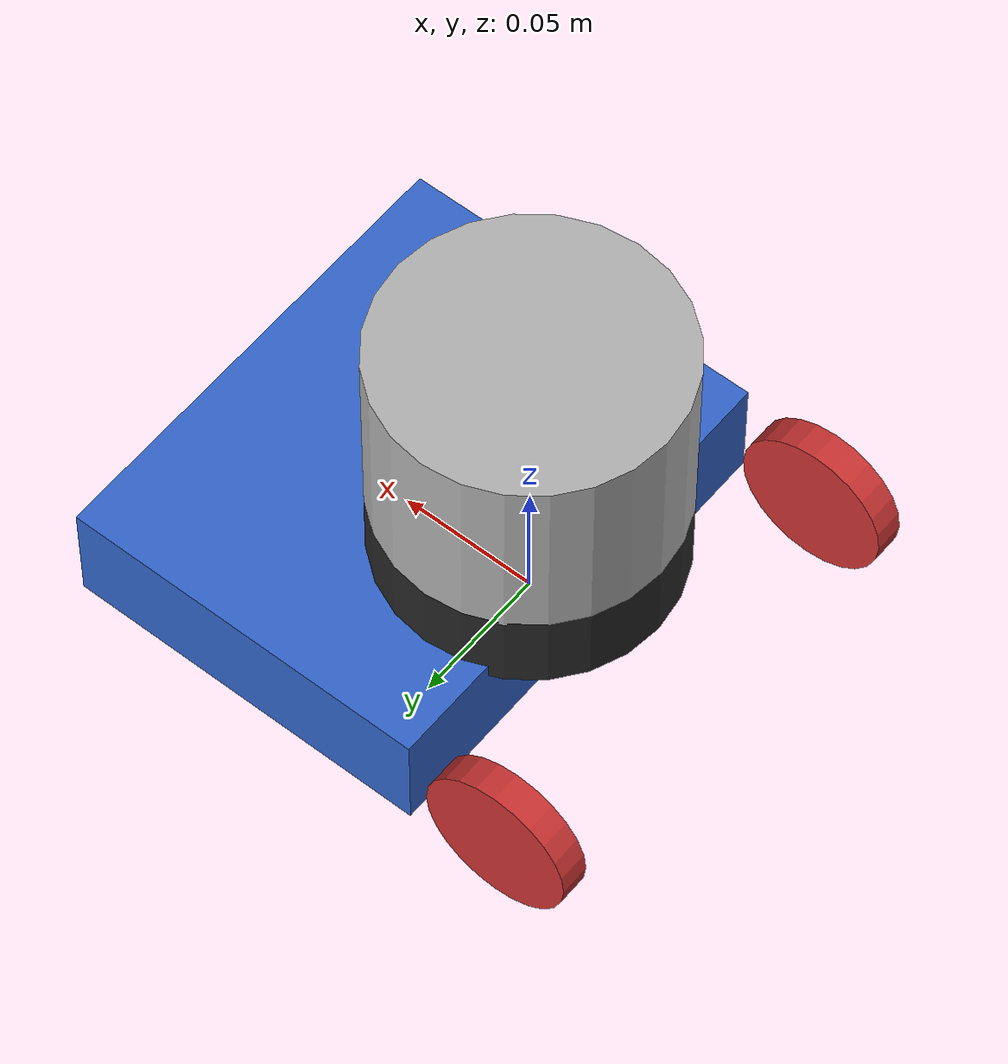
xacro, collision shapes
<?xml version="1.0"?>
<robot name="turtlebot" xmlns:xacro="http://ros.org/wiki/xacro">

  <xacro:include filename="bot_ros2_control.xacro"/>

  <!-- Base Footprint (reference frame) -->
  <link name="base_footprint"/>

  <!-- Main Base Link -->
  <link name="base_link">
    <inertial>
      <origin xyz="-0.03 0 0" rpy="0 0 0"/>
      <mass value="2"/>
      <inertia ixx="0.004883" ixy="0" ixz="0" iyy="0.003067" iyz="0" izz="0.007683"/>
    </inertial>

    <collision name="base_collision">
      <origin xyz="0.0465 0 0" rpy="0 0 0"/>
      <geometry>
        <box size="0.135 0.17 0.04"/>
      </geometry>
      <surface>
        <contact>
          <ode>
            <min_depth>0.001</min_depth>
            <max_vel>0</max_vel>
          </ode>
        </contact>
      </surface>
    </collision>

    <visual name="base_visual">
      <origin xyz="0 0 0" rpy="0 0 0"/>
      <geometry>
        <box  size="0.17 0.17 0.035"/>
      </geometry>
      <material name="blue">
        <color rgba="0.2 0.4 0.8 1"/>
      </material>
    </visual>

  </link>

  <!-- Fixed joint between base_footprint and base_link -->
  <joint name="base_footprint_joint" type="fixed">
    <parent link="base_footprint"/>
    <child link="base_link"/>
    <origin xyz="0 0 0.01" rpy="0 0 0"/>
  </joint>

  <!-- ========== LEFT WHEEL ========== -->

  <link name="base_left_wheel">
    <inertial>
      <origin xyz="0 0 0" rpy="0 0 0"/>
      <mass value="0.5"/>
      <inertia ixx="0.000091" ixy="0" ixz="0" iyy="0.000182" iyz="0" izz="0.000091"/>
    </inertial>

    <visual name="base_left_wheel_visual">
      <origin xyz="0 0 0" rpy="1.57079632679 0 0"/>
      <geometry>
        <cylinder radius="0.027" length="0.011"/>
      </geometry>
      <material name="red">
        <color rgba="0.8 0.2 0.2 1"/>
      </material>
    </visual>

    <collision name="base_left_wheel_collision">
      <origin xyz="0 0 0" rpy="1.57079632679 0 0"/>
      <geometry>
        <cylinder radius="0.027" length="0.011"/>
      </geometry>
    </collision>
  </link>

  <joint name="base_left_wheel_joint" type="continuous">
    <parent link="base_link"/>
    <child link="base_left_wheel"/>
    <origin xyz="-0.055 0.08 0" rpy="0 0 0"/>
    <axis xyz="0 1 0"/>
  </joint>

    <!-- ========== RIGHTWHEEL ========== -->

  <link name="base_right_wheel">
    <inertial>
      <origin xyz="0 0 0" rpy="0 0 0"/>
      <mass value="0.5"/>
      <inertia ixx="0.000091" ixy="0" ixz="0" iyy="0.000182" iyz="0" izz="0.000091"/>
    </inertial>

    <visual name="base_right_wheel_visual">
      <origin xyz="0 0 0" rpy="1.57079632679 0 0"/>
      <geometry>
        <cylinder radius="0.027" length="0.011"/>
      </geometry>
      <material name="red">
        <color rgba="0.8 0.2 0.2 1"/>
      </material>
    </visual>

    <collision name="base_right_wheel_collision">
      <origin xyz="0 0 0" rpy="1.57079632679 0 0"/>
      <geometry>
        <cylinder radius="0.027" length="0.011"/>
      </geometry>
    </collision>
  </link>

  <joint name="base_right_wheel_joint" type="continuous">
    <parent link="base_link"/>
    <child link="base_right_wheel"/>
    <origin xyz="-0.055 -0.08 0" rpy="0 0 0"/>
    <axis xyz="0 1 0"/>
  </joint>

<!-- =========CASTER WHEEL========== -->

  <link name="caster_wheel">
    <inertial>
      <origin xyz="0 0 0" rpy="0 0 0"/>
      <mass value="0.01"/>
      <inertia ixx="0.000000010" ixy="0" ixz="0" iyy="0.000000010" iyz="0" izz="0.000000010"/>
    </inertial>

    <visual name="caster_wheel_visual">
      <origin xyz="0 0 0" rpy="0 0 0"/>
      <geometry>
        <sphere radius="0.005"/>
      </geometry>
      <material name="green">
        <color rgba="0.2 0.7 0.3 1"/>
      </material>
    </visual>

    <collision name="caster_wheel_collision">
      <origin xyz="0 0 0" rpy="0 0 0"/>
      <geometry>
        <sphere radius="0.005"/>
      </geometry>
      <surface>
        <contact>
          <ode>
            <min_depth>0.001</min_depth>
            <max_vel>0</max_vel>
          </ode>
        </contact>
      </surface>
    </collision>
  </link>

  <joint name="caster_wheel_joint" type="fixed">
    <parent link="base_link"/>
    <child link="caster_wheel"/>
    <origin xyz="0.075 0 -0.02" rpy="0 0 0"/>
  </joint>

   <link name="rgb_camera">
    <inertial>
    <origin xyz="-0.03 0 0" rpy="0 0 0"/>
        <mass value="0.1" />
        <inertia ixx="0.000023" ixy="0.0" ixz="0"
            iyy="0.000011" iyz="0" izz="0.000030" />
    </inertial>
    <visual>
      <origin xyz="0 0 0" rpy="0 0 1.57079632679" />
      <geometry>
         <mesh filename="file:///home/aditya-pachauri/turtlebot_ros_cir_ws/src/bot_description/meshes/3dCamera.DAE" scale="1 1 1"/>
      </geometry>
    </visual>

    <collision>
      <origin xyz="0 0 0" rpy="0 0 0"/>
      <geometry>
          <box size="0.03 0.05 0.02" />
      </geometry>
    </collision>
  </link>

  <joint name="camera_joint" type="fixed">
    <origin xyz="0.085 0 0.002" rpy="0 0.0 0"/>
    <parent link="base_link"/>
    <child link="rgb_camera"/>
    <axis xyz="0.0 0 0"/>
  </joint>

  <joint type="fixed" name="camera_optical_joint">
    <origin xyz="0 0 0.151" rpy="0 0 0"/>
    <parent link="rgb_camera"/>
    <child link="camera_link_optical"/>
  </joint>

   <link name="camera_link_optical">
  </link>

    <gazebo reference="camera_link_optical">
    <sensor name="camera" type="camera">
      <camera>
        <horizontal_fov>1.3962634</horizontal_fov>
        <image>
          <width>640</width>
          <height>480</height>
          <format>R8G8B8</format>
        </image>
        <clip>
          <near>0.1</near>
          <far>15</far>
        </clip>
        <noise>
          <type>gaussian</type>
          <mean>0.0</mean>
          <stddev>0.007</stddev>
        </noise>
        <optical_frame_id>camera_link_optical</optical_frame_id>
        <camera_info_topic>camera/camera_info</camera_info_topic>
      </camera>
      <always_on>1</always_on>
      <update_rate>20</update_rate>
      <visualize>true</visualize>
      <topic>camera/image_raw</topic>
    </sensor>
    </gazebo>

  <link name="laser_link">

    <visual>
      <geometry>
        <mesh filename="file:///home/aditya-pachauri/turtlebot_ros_cir_ws/src/bot_description/meshes/lidar_3d_v1.dae" scale="1 1 1"/>
      </geometry>
    </visual>

    <collision>
      <origin xyz="0 0 0.03585" rpy="0 0 0"/>
      <geometry>
        <cylinder radius="0.0516" length="0.0717" />
      </geometry>
    </collision>
  </link>

  <link name="lidar_base">

    <visual>
    <origin xyz="0 0 0.011" rpy="0 0 0"/>
        <material name="black">
        <color rgba="0.15 0.15 0.15 1"/>
      </material>
      <geometry>
        <cylinder radius="0.0516" length="0.032" />
      </geometry>
    </visual>

    <collision>
      <origin xyz="0 0 0.011" rpy="0 0 0"/>
      <geometry>
        <cylinder radius="0.0516" length="0.032" />
      </geometry>
    </collision>
  </link>

    <joint name="lidar_base_joint" type="fixed">
    <origin xyz="0 0 0.02" rpy="0 0.0 3.14"/>
    <parent link="base_link"/>
    <child link="lidar_base"/>
    <axis xyz="0.0 0.0 1.0"/>
  </joint>

  <joint name="laser_joint" type="fixed">
    <origin xyz="0 0 0.046" rpy="0 0.0 3.14"/>
    <parent link="base_link"/>
    <child link="laser_link"/>
    <axis xyz="0.0 0.0 1.0"/>
  </joint>

  <gazebo reference="laser_link">
    <sensor name="lidar" type="gpu_lidar">
      <always_on>true</always_on>
      <visualize>true</visualize>
      <topic>scan</topic>
      <update_rate>5</update_rate>
      <gz_frame_id>laser_link</gz_frame_id>
      <lidar>
        <scan>
          <horizontal>
            <samples>1024</samples>
            <resolution>1.00000</resolution>
            <min_angle>0.000000</min_angle>
            <max_angle>6.280000</max_angle>
          </horizontal>
        </scan>
        <range>
          <min>0.120000</min>
          <max>12.0</max>
          <resolution>0.02</resolution>
        </range>
        <noise>
          <type>gaussian</type>
          <mean>0.0</mean>
          <stddev>0.01</stddev>
        </noise>
      </lidar>
    </sensor>
  </gazebo>

  <joint name="navsat_joint" type="fixed">
    <origin xyz="0 0 0" rpy="0 0 0" />
    <parent link="base_link"/>
    <child link="navsat_link" />
  </joint>

  <link name="navsat_link">
  </link>

  <joint name="imu_joint" type="fixed">
    <origin xyz="0 0 0" rpy="0 0 0" />
    <parent link="base_link"/>
    <child link="imu_link" />
  </joint>

  <link name="imu_link">
  </link>

  <gazebo reference="imu_link">
    <sensor name="imu" type="imu">
      <always_on>1</always_on>
      <update_rate>50</update_rate>
      <visualize>true</visualize>
      <topic>imu</topic>
      <enable_metrics>true</enable_metrics>
      <gz_frame_id>imu_link</gz_frame_id>
    </sensor>
  </gazebo>

  <gazebo reference="navsat_link">
    <sensor name="navsat" type="navsat">
      <always_on>1</always_on>
      <update_rate>1</update_rate>
      <topic>navsat</topic>
      <gz_frame_id>navsat_link</gz_frame_id>
    </sensor>
  </gazebo>

 <!-- Gazebo wheel physics -->
  <gazebo reference="base_left_wheel">
    <mu1>1.0</mu1>
    <mu2>0.8</mu2>
    <kp>100000.0</kp>
    <kd>10.0</kd>
    <minDepth>0.001</minDepth>
    <maxVel>1</maxVel>
    <fdir1>1 0 0</fdir1>
  </gazebo>

  <gazebo reference="base_right_wheel">
    <mu1>1.0</mu1>
    <mu2>0.8</mu2>
    <kp>100000.0</kp>
    <kd>10.0</kd>
    <minDepth>0.001</minDepth>
    <maxVel>1</maxVel>
    <fdir1>1 0 0</fdir1>
  </gazebo>

  <gazebo>
    <plugin filename="gz_ros2_control-system" name="gz_ros2_control::GazeboSimROS2ControlPlugin">
      <parameters>/home/aditya-pachauri/turtlebot_ros_cir_ws/src/bot_controller/config/bot_controller.yaml</parameters>
    </plugin>

    <plugin filename="gz-sim-imu-system" name="gz::sim::systems::Imu">
      <initial_orientation_as_reference>false</initial_orientation_as_reference>
    </plugin>

    <plugin filename="gz-sim-sensors-system" name="gz::sim::systems::Sensors">
        <render_engine>ogre2</render_engine>
    </plugin>

    <plugin filename="gz-sim-navsat-system" name="gz::sim::systems::NavSat">
    </plugin>

  </gazebo>

</robot>
